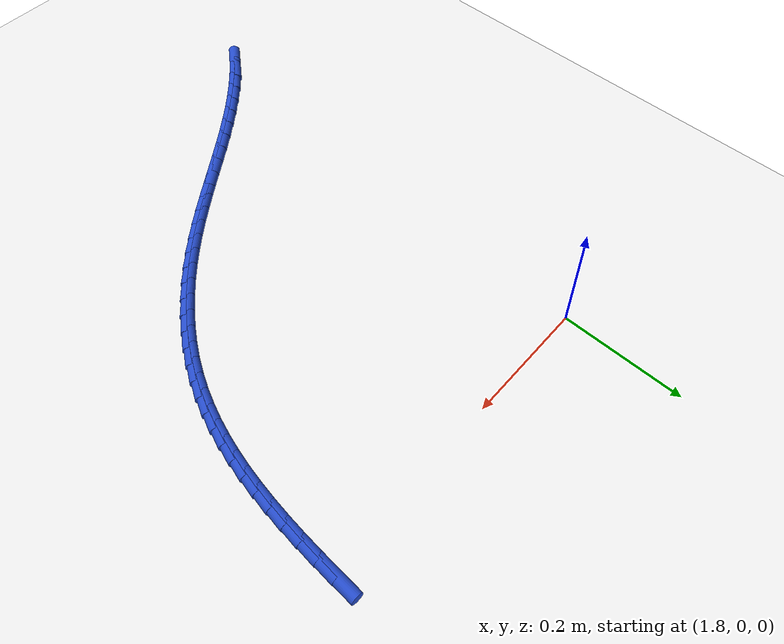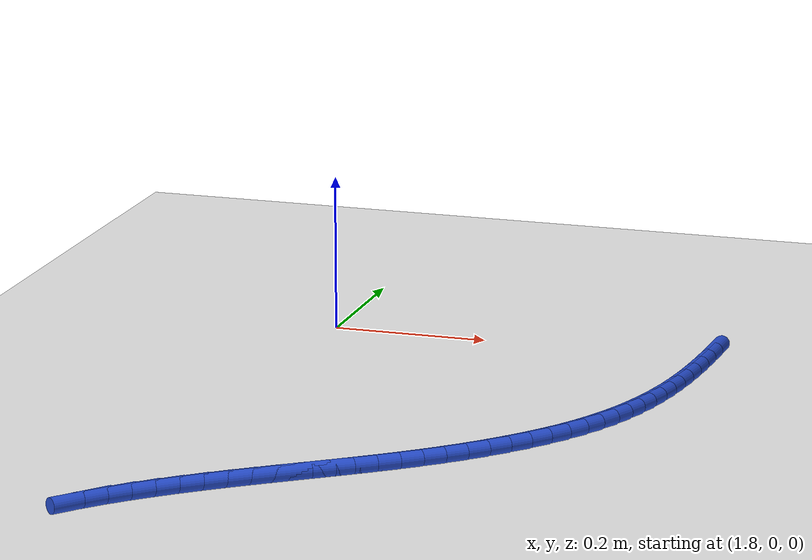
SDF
<sdf version="1.6">
 <world name="default">
  <model name="ground_plane">
   <static>1</static>
   <link name="link">
    <collision name="collision">
     <geometry><plane><normal>0 0 1</normal><size>100 100</size></plane></geometry>
     <surface><friction><ode><mu>100</mu><mu2>50</mu2></ode></friction></surface>
    </collision>
    <visual name="visual">
     <cast_shadows>0</cast_shadows>
     <geometry><plane><normal>0 0 1</normal><size>100 100</size></plane></geometry>
     <material>
      <script><uri>file://media/materials/scripts/gazebo.material</uri><name>Gazebo/WhiteGlow</name></script>
     </material>
    </visual>
   </link>
  </model>
  <model name="line">
   <link name="link_142">
    <pose>2.2993543678035544 0.006853603473564049 0.01 0 1.57 1.5347504184447276</pose>
    <collision name="collision">
     <geometry><cylinder><radius>0.01</radius><length>0.08</length></cylinder></geometry>
    </collision>
    <visual name="visual">
     <material>
      <script><name>Gazebo/Blue</name><uri>file://media/materials/scripts/gazebo.material</uri></script>
     </material>
     <geometry><cylinder><radius>0.01</radius><length>0.08</length></cylinder></geometry>
    </visual>
   </link>
   <link name="link_143">
    <pose>2.298131104742691 -0.027067950251606014 0.01 0 1.57 1.5170755042179767</pose>
    <collision name="collision">
     <geometry><cylinder><radius>0.01</radius><length>0.08</length></cylinder></geometry>
    </collision>
    <visual name="visual">
     <material>
      <script><name>Gazebo/Blue</name><uri>file://media/materials/scripts/gazebo.material</uri></script>
     </material>
     <geometry><cylinder><radius>0.01</radius><length>0.08</length></cylinder></geometry>
    </visual>
   </link>
   <link name="link_144">
    <pose>2.2963715127359596 -0.05979081099888764 0.01 0 1.57 1.4956766856224128</pose>
    <collision name="collision">
     <geometry><cylinder><radius>0.01</radius><length>0.08</length></cylinder></geometry>
    </collision>
    <visual name="visual">
     <material>
      <script><name>Gazebo/Blue</name><uri>file://media/materials/scripts/gazebo.material</uri></script>
     </material>
     <geometry><cylinder><radius>0.01</radius><length>0.08</length></cylinder></geometry>
    </visual>
   </link>
   <link name="link_145">
    <pose>2.293994041465327 -0.09138038675017666 0.01 0 1.57 1.4703214689507942</pose>
    <collision name="collision">
     <geometry><cylinder><radius>0.01</radius><length>0.08</length></cylinder></geometry>
    </collision>
    <visual name="visual">
     <material>
      <script><name>Gazebo/Blue</name><uri>file://media/materials/scripts/gazebo.material</uri></script>
     </material>
     <geometry><cylinder><radius>0.01</radius><length>0.08</length></cylinder></geometry>
    </visual>
   </link>
   <link name="link_146">
    <pose>2.290916988102225 -0.12190236972984562 0.01 0 1.57 1.4408309025567303</pose>
    <collision name="collision">
     <geometry><cylinder><radius>0.01</radius><length>0.08</length></cylinder></geometry>
    </collision>
    <visual name="visual">
     <material>
      <script><name>Gazebo/Blue</name><uri>file://media/materials/scripts/gazebo.material</uri></script>
     </material>
     <geometry><cylinder><radius>0.01</radius><length>0.08</length></cylinder></geometry>
    </visual>
   </link>
   <link name="link_147">
    <pose>2.28705864981809 -0.1514224521622643 0.01 0 1.57 1.4070998743805652</pose>
    <collision name="collision">
     <geometry><cylinder><radius>0.01</radius><length>0.08</length></cylinder></geometry>
    </collision>
    <visual name="visual">
     <material>
      <script><name>Gazebo/Blue</name><uri>file://media/materials/scripts/gazebo.material</uri></script>
     </material>
     <geometry><cylinder><radius>0.01</radius><length>0.08</length></cylinder></geometry>
    </visual>
   </link>
   <link name="link_148">
    <pose>2.282337323784355 -0.18000632627180532 0.01 0 1.57 1.3691248930702307</pose>
    <collision name="collision">
     <geometry><cylinder><radius>0.01</radius><length>0.08</length></cylinder></geometry>
    </collision>
    <visual name="visual">
     <material>
      <script><name>Gazebo/Blue</name><uri>file://media/materials/scripts/gazebo.material</uri></script>
     </material>
     <geometry><cylinder><radius>0.01</radius><length>0.08</length></cylinder></geometry>
    </visual>
   </link>
   <link name="link_149">
    <pose>2.2766713071724545 -0.20771968428284035 0.01 0 1.57 1.3270325520575956</pose>
    <collision name="collision">
     <geometry><cylinder><radius>0.01</radius><length>0.08</length></cylinder></geometry>
    </collision>
    <visual name="visual">
     <material>
      <script><name>Gazebo/Blue</name><uri>file://media/materials/scripts/gazebo.material</uri></script>
     </material>
     <geometry><cylinder><radius>0.01</radius><length>0.08</length></cylinder></geometry>
    </visual>
   </link>
   <link name="link_150">
    <pose>2.2699788971538233 -0.23462821841974102 0.01 0 1.57 1.2811043596214067</pose>
    <collision name="collision">
     <geometry><cylinder><radius>0.01</radius><length>0.08</length></cylinder></geometry>
    </collision>
    <visual name="visual">
     <material>
      <script><name>Gazebo/Blue</name><uri>file://media/materials/scripts/gazebo.material</uri></script>
     </material>
     <geometry><cylinder><radius>0.01</radius><length>0.08</length></cylinder></geometry>
    </visual>
   </link>
   <link name="link_151">
    <pose>2.2621783908998947 -0.2607976209068789 0.01 0 1.57 1.2317921729353285</pose>
    <collision name="collision">
     <geometry><cylinder><radius>0.01</radius><length>0.08</length></cylinder></geometry>
    </collision>
    <visual name="visual">
     <material>
      <script><name>Gazebo/Blue</name><uri>file://media/materials/scripts/gazebo.material</uri></script>
     </material>
     <geometry><cylinder><radius>0.01</radius><length>0.08</length></cylinder></geometry>
    </visual>
   </link>
   <link name="link_152">
    <pose>2.2531880855821043 -0.2862935839686259 0.01 0 1.57 1.1797180842647537</pose>
    <collision name="collision">
     <geometry><cylinder><radius>0.01</radius><length>0.08</length></cylinder></geometry>
    </collision>
    <visual name="visual">
     <material>
      <script><name>Gazebo/Blue</name><uri>file://media/materials/scripts/gazebo.material</uri></script>
     </material>
     <geometry><cylinder><radius>0.01</radius><length>0.08</length></cylinder></geometry>
    </visual>
   </link>
   <link name="link_153">
    <pose>2.242926278371885 -0.3111817998293534 0.01 0 1.57 1.1256540892588995</pose>
    <collision name="collision">
     <geometry><cylinder><radius>0.01</radius><length>0.08</length></cylinder></geometry>
    </collision>
    <visual name="visual">
     <material>
      <script><name>Gazebo/Blue</name><uri>file://media/materials/scripts/gazebo.material</uri></script>
     </material>
     <geometry><cylinder><radius>0.01</radius><length>0.08</length></cylinder></geometry>
    </visual>
   </link>
   <link name="link_154">
    <pose>2.231311266440671 -0.33552796071343327 0.01 0 1.57 1.0704805318189579</pose>
    <collision name="collision">
     <geometry><cylinder><radius>0.01</radius><length>0.08</length></cylinder></geometry>
    </collision>
    <visual name="visual">
     <material>
      <script><name>Gazebo/Blue</name><uri>file://media/materials/scripts/gazebo.material</uri></script>
     </material>
     <geometry><cylinder><radius>0.01</radius><length>0.08</length></cylinder></geometry>
    </visual>
   </link>
   <link name="link_155">
    <pose>2.2182613469598964 -0.35939775884523767 0.01 0 1.57 1.0151277881374456</pose>
    <collision name="collision">
     <geometry><cylinder><radius>0.01</radius><length>0.08</length></cylinder></geometry>
    </collision>
    <visual name="visual">
     <material>
      <script><name>Gazebo/Blue</name><uri>file://media/materials/scripts/gazebo.material</uri></script>
     </material>
     <geometry><cylinder><radius>0.01</radius><length>0.08</length></cylinder></geometry>
    </visual>
   </link>
   <link name="link_156">
    <pose>2.20369483554251 -0.38285687422781534 0.01 0 1.57 0.9614118927316361</pose>
    <collision name="collision">
     <geometry><cylinder><radius>0.01</radius><length>0.08</length></cylinder></geometry>
    </collision>
    <visual name="visual">
     <material>
      <script><name>Gazebo/Blue</name><uri>file://media/materials/scripts/gazebo.material</uri></script>
     </material>
     <geometry><cylinder><radius>0.01</radius><length>0.08</length></cylinder></geometry>
    </visual>
   </link>
   <link name="link_157">
    <pose>2.1875878562747535 -0.40593267677798817 0.01 0 1.57 0.9122315919417219</pose>
    <collision name="collision">
     <geometry><cylinder><radius>0.01</radius><length>0.08</length></cylinder></geometry>
    </collision>
    <visual name="visual">
     <material>
      <script><name>Gazebo/Blue</name><uri>file://media/materials/scripts/gazebo.material</uri></script>
     </material>
     <geometry><cylinder><radius>0.01</radius><length>0.08</length></cylinder></geometry>
    </visual>
   </link>
   <link name="link_158">
    <pose>2.1701023345795543 -0.42852940454584626 0.01 0 1.57 0.8671669166833992</pose>
    <collision name="collision">
     <geometry><cylinder><radius>0.01</radius><length>0.08</length></cylinder></geometry>
    </collision>
    <visual name="visual">
     <material>
      <script><name>Gazebo/Blue</name><uri>file://media/materials/scripts/gazebo.material</uri></script>
     </material>
     <geometry><cylinder><radius>0.01</radius><length>0.08</length></cylinder></geometry>
    </visual>
   </link>
   <link name="link_159">
    <pose>2.151437450760845 -0.45052660650698384 0.01 0 1.57 0.8252613975147778</pose>
    <collision name="collision">
     <geometry><cylinder><radius>0.01</radius><length>0.08</length></cylinder></geometry>
    </collision>
    <visual name="visual">
     <material>
      <script><name>Gazebo/Blue</name><uri>file://media/materials/scripts/gazebo.material</uri></script>
     </material>
     <geometry><cylinder><radius>0.01</radius><length>0.08</length></cylinder></geometry>
    </visual>
   </link>
   <link name="link_160">
    <pose>2.1317923851225564 -0.47180383163699474 0.01 0 1.57 0.7856607519468876</pose>
    <collision name="collision">
     <geometry><cylinder><radius>0.01</radius><length>0.08</length></cylinder></geometry>
    </collision>
    <visual name="visual">
     <material>
      <script><name>Gazebo/Blue</name><uri>file://media/materials/scripts/gazebo.material</uri></script>
     </material>
     <geometry><cylinder><radius>0.01</radius><length>0.08</length></cylinder></geometry>
    </visual>
   </link>
   <link name="link_161">
    <pose>2.1113663179686206 -0.49224062891147335 0.01 0 1.57 0.748107895249426</pose>
    <collision name="collision">
     <geometry><cylinder><radius>0.01</radius><length>0.08</length></cylinder></geometry>
    </collision>
    <visual name="visual">
     <material>
      <script><name>Gazebo/Blue</name><uri>file://media/materials/scripts/gazebo.material</uri></script>
     </material>
     <geometry><cylinder><radius>0.01</radius><length>0.08</length></cylinder></geometry>
    </visual>
   </link>
   <link name="link_162">
    <pose>2.090341546566957 -0.5117530562339555 0.01 0 1.57 0.7148610585152878</pose>
    <collision name="collision">
     <geometry><cylinder><radius>0.01</radius><length>0.08</length></cylinder></geometry>
    </collision>
    <visual name="visual">
     <material>
      <script><name>Gazebo/Blue</name><uri>file://media/materials/scripts/gazebo.material</uri></script>
     </material>
     <geometry><cylinder><radius>0.01</radius><length>0.08</length></cylinder></geometry>
    </visual>
   </link>
   <link name="link_163">
    <pose>2.0688175663356727 -0.5304362273819357 0.01 0 1.57 0.6869708077632857</pose>
    <collision name="collision">
     <geometry><cylinder><radius>0.01</radius><length>0.08</length></cylinder></geometry>
    </collision>
    <visual name="visual">
     <material>
      <script><name>Gazebo/Blue</name><uri>file://media/materials/scripts/gazebo.material</uri></script>
     </material>
     <geometry><cylinder><radius>0.01</radius><length>0.08</length></cylinder></geometry>
    </visual>
   </link>
   <link name="link_164">
    <pose>2.0468685291119786 -0.5484400606697233 0.01 0 1.57 0.6646658572296469</pose>
    <collision name="collision">
     <geometry><cylinder><radius>0.01</radius><length>0.08</length></cylinder></geometry>
    </collision>
    <visual name="visual">
     <material>
      <script><name>Gazebo/Blue</name><uri>file://media/materials/scripts/gazebo.material</uri></script>
     </material>
     <geometry><cylinder><radius>0.01</radius><length>0.08</length></cylinder></geometry>
    </visual>
   </link>
   <link name="link_165">
    <pose>2.024568580247088 -0.5659144884373583 0.01 0 1.57 0.6480894301034962</pose>
    <collision name="collision">
     <geometry><cylinder><radius>0.01</radius><length>0.08</length></cylinder></geometry>
    </collision>
    <visual name="visual">
     <material>
      <script><name>Gazebo/Blue</name><uri>file://media/materials/scripts/gazebo.material</uri></script>
     </material>
     <geometry><cylinder><radius>0.01</radius><length>0.08</length></cylinder></geometry>
    </visual>
   </link>
   <link name="link_166">
    <pose>2.0019918650922106 -0.5830094430248812 0.01 0 1.57 0.6373172124748313</pose>
    <collision name="collision">
     <geometry><cylinder><radius>0.01</radius><length>0.08</length></cylinder></geometry>
    </collision>
    <visual name="visual">
     <material>
      <script><name>Gazebo/Blue</name><uri>file://media/materials/scripts/gazebo.material</uri></script>
     </material>
     <geometry><cylinder><radius>0.01</radius><length>0.08</length></cylinder></geometry>
    </visual>
   </link>
   <link name="link_167">
    <pose>1.9792125289985583 -0.5998748567723328 0.01 0 1.57 0.6323724116806262</pose>
    <collision name="collision">
     <geometry><cylinder><radius>0.01</radius><length>0.08</length></cylinder></geometry>
    </collision>
    <visual name="visual">
     <material>
      <script><name>Gazebo/Blue</name><uri>file://media/materials/scripts/gazebo.material</uri></script>
     </material>
     <geometry><cylinder><radius>0.01</radius><length>0.08</length></cylinder></geometry>
    </visual>
   </link>
   <link name="link_168">
    <pose>1.9563047173173425 -0.6166606620197537 0.01 0 1.57 0.633236473801442</pose>
    <collision name="collision">
     <geometry><cylinder><radius>0.01</radius><length>0.08</length></cylinder></geometry>
    </collision>
    <visual name="visual">
     <material>
      <script><name>Gazebo/Blue</name><uri>file://media/materials/scripts/gazebo.material</uri></script>
     </material>
     <geometry><cylinder><radius>0.01</radius><length>0.08</length></cylinder></geometry>
    </visual>
   </link>
   <link name="link_169">
    <pose>1.9333425753997742 -0.6335167911071843 0.01 0 1.57 0.6398546568238931</pose>
    <collision name="collision">
     <geometry><cylinder><radius>0.01</radius><length>0.08</length></cylinder></geometry>
    </collision>
    <visual name="visual">
     <material>
      <script><name>Gazebo/Blue</name><uri>file://media/materials/scripts/gazebo.material</uri></script>
     </material>
     <geometry><cylinder><radius>0.01</radius><length>0.08</length></cylinder></geometry>
    </visual>
   </link>
   <link name="link_170">
    <pose>1.9104002485970657 -0.6505931763746651 0.01 0 1.57 0.6521363121028882</pose>
    <collision name="collision">
     <geometry><cylinder><radius>0.01</radius><length>0.08</length></cylinder></geometry>
    </collision>
    <visual name="visual">
     <material>
      <script><name>Gazebo/Blue</name><uri>file://media/materials/scripts/gazebo.material</uri></script>
     </material>
     <geometry><cylinder><radius>0.01</radius><length>0.08</length></cylinder></geometry>
    </visual>
   </link>
   <link name="link_171">
    <pose>1.8875518822604276 -0.668039750162237 0.01 0 1.57 0.6699502516572265</pose>
    <collision name="collision">
     <geometry><cylinder><radius>0.01</radius><length>0.08</length></cylinder></geometry>
    </collision>
    <visual name="visual">
     <material>
      <script><name>Gazebo/Blue</name><uri>file://media/materials/scripts/gazebo.material</uri></script>
     </material>
     <geometry><cylinder><radius>0.01</radius><length>0.08</length></cylinder></geometry>
    </visual>
   </link>
   <link name="link_172">
    <pose>1.8648716217410712 -0.68600644480994 0.01 0 1.57 0.6931160628151088</pose>
    <collision name="collision">
     <geometry><cylinder><radius>0.01</radius><length>0.08</length></cylinder></geometry>
    </collision>
    <visual name="visual">
     <material>
      <script><name>Gazebo/Blue</name><uri>file://media/materials/scripts/gazebo.material</uri></script>
     </material>
     <geometry><cylinder><radius>0.01</radius><length>0.08</length></cylinder></geometry>
    </visual>
   </link>
   <link name="link_173">
    <pose>1.8424336123902072 -0.7046431926578154 0.01 0 1.57 0.7213929312870234</pose>
    <collision name="collision">
     <geometry><cylinder><radius>0.01</radius><length>0.08</length></cylinder></geometry>
    </collision>
    <visual name="visual">
     <material>
      <script><name>Gazebo/Blue</name><uri>file://media/materials/scripts/gazebo.material</uri></script>
     </material>
     <geometry><cylinder><radius>0.01</radius><length>0.08</length></cylinder></geometry>
    </visual>
   </link>
   <link name="link_174">
    <pose>1.8203120795340966 -0.7240998629554888 0.01 0 1.57 0.7546473162560936</pose>
    <collision name="collision">
     <geometry><cylinder><radius>0.01</radius><length>0.08</length></cylinder></geometry>
    </collision>
    <visual name="visual">
     <material>
      <script><name>Gazebo/Blue</name><uri>file://media/materials/scripts/gazebo.material</uri></script>
     </material>
     <geometry><cylinder><radius>0.01</radius><length>0.08</length></cylinder></geometry>
    </visual>
   </link>
   <link name="link_175">
    <pose>1.7986298579422735 -0.7444879781182254 0.01 0 1.57 0.7934011985216336</pose>
    <collision name="collision">
     <geometry><cylinder><radius>0.01</radius><length>0.08</length></cylinder></geometry>
    </collision>
    <visual name="visual">
     <material>
      <script><name>Gazebo/Blue</name><uri>file://media/materials/scripts/gazebo.material</uri></script>
     </material>
     <geometry><cylinder><radius>0.01</radius><length>0.08</length></cylinder></geometry>
    </visual>
   </link>
   <link name="link_176">
    <pose>1.777640809398381 -0.7658156964643504 0.01 0 1.57 0.8382855297660569</pose>
    <collision name="collision">
     <geometry><cylinder><radius>0.01</radius><length>0.08</length></cylinder></geometry>
    </collision>
    <visual name="visual">
     <material>
      <script><name>Gazebo/Blue</name><uri>file://media/materials/scripts/gazebo.material</uri></script>
     </material>
     <geometry><cylinder><radius>0.01</radius><length>0.08</length></cylinder></geometry>
    </visual>
   </link>
   <link name="link_177">
    <pose>1.7576206504976177 -0.788073935570841 0.01 0 1.57 0.8899871349276556</pose>
    <collision name="collision">
     <geometry><cylinder><radius>0.01</radius><length>0.08</length></cylinder></geometry>
    </collision>
    <visual name="visual">
     <material>
      <script><name>Gazebo/Blue</name><uri>file://media/materials/scripts/gazebo.material</uri></script>
     </material>
     <geometry><cylinder><radius>0.01</radius><length>0.08</length></cylinder></geometry>
    </visual>
   </link>
  </model>
 </world>
</sdf>
